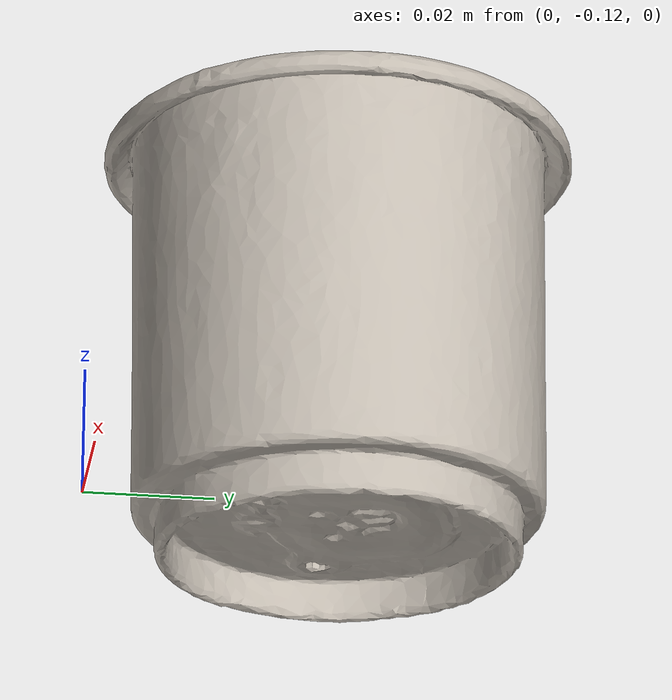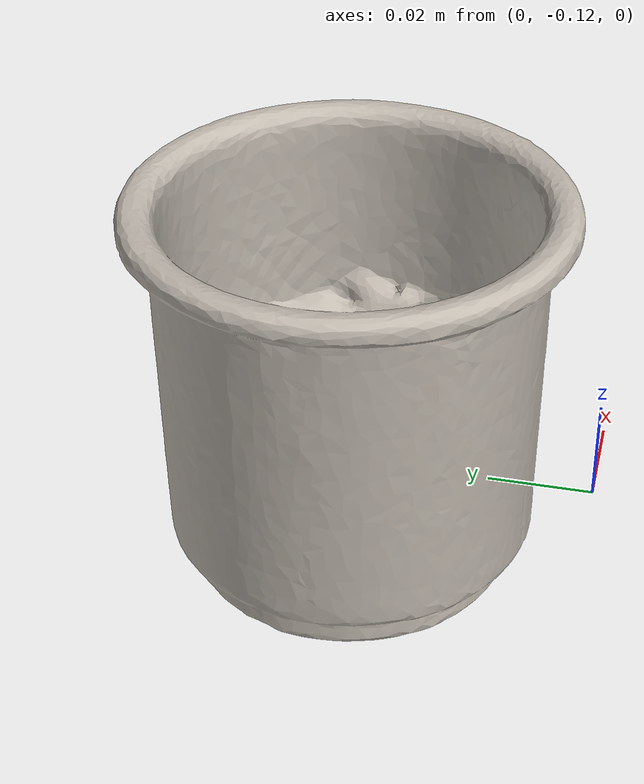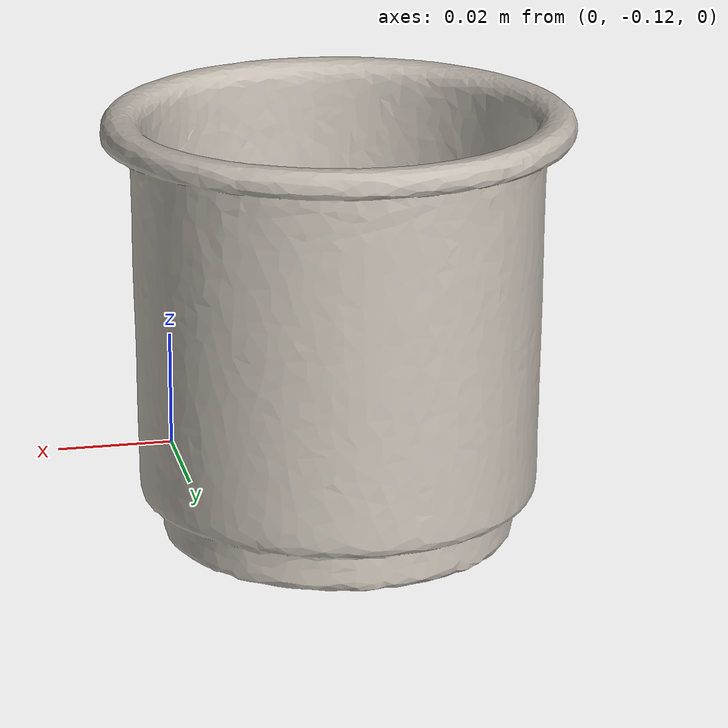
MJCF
<mujoco model="cups_e">
  <compiler angle="radian" meshdir="assets" texturedir="assets"/>
    <default>
        <default class="ycb_col">
            <geom contype="1" conaffinity="1" group="3" rgba=".4 .5 .6 1"/>
        </default>
        <default class="ycb_viz">
            <geom contype="0" conaffinity="0" type="mesh" mass="0"/>
        </default>
    </default>
  <asset>
    <texture type="2d" name="e_cups_tex" file="texture_map.png"/>
    <material name="e_cups_mat" texture="e_cups_tex" specular="0.5" shininess="0.5"/>
    <mesh file="textured.obj" name="e_cups"/>
    <mesh file="textured_collision_0.obj" name="e_cups_collision_0"/>
    <mesh file="textured_collision_1.obj" name="e_cups_collision_1"/>
    <mesh file="textured_collision_2.obj" name="e_cups_collision_2"/>
    <mesh file="textured_collision_3.obj" name="e_cups_collision_3"/>
    <mesh file="textured_collision_4.obj" name="e_cups_collision_4"/>
    <mesh file="textured_collision_5.obj" name="e_cups_collision_5"/>
    <mesh file="textured_collision_6.obj" name="e_cups_collision_6"/>
    <mesh file="textured_collision_7.obj" name="e_cups_collision_7"/>
    <mesh file="textured_collision_8.obj" name="e_cups_collision_8"/>
    <mesh file="textured_collision_9.obj" name="e_cups_collision_9"/>
    <mesh file="textured_collision_10.obj" name="e_cups_collision_10"/>
    <mesh file="textured_collision_11.obj" name="e_cups_collision_11"/>
    <mesh file="textured_collision_12.obj" name="e_cups_collision_12"/>
    <mesh file="textured_collision_13.obj" name="e_cups_collision_13"/>
    <mesh file="textured_collision_14.obj" name="e_cups_collision_14"/>
    <mesh file="textured_collision_15.obj" name="e_cups_collision_15"/>
    <mesh file="textured_collision_16.obj" name="e_cups_collision_16"/>
    <mesh file="textured_collision_17.obj" name="e_cups_collision_17"/>
    <mesh file="textured_collision_18.obj" name="e_cups_collision_18"/>
    <mesh file="textured_collision_19.obj" name="e_cups_collision_19"/>
    <mesh file="textured_collision_20.obj" name="e_cups_collision_20"/>
    <mesh file="textured_collision_21.obj" name="e_cups_collision_21"/>
    <mesh file="textured_collision_22.obj" name="e_cups_collision_22"/>
    <mesh file="textured_collision_23.obj" name="e_cups_collision_23"/>
    <mesh file="textured_collision_24.obj" name="e_cups_collision_24"/>
    <mesh file="textured_collision_25.obj" name="e_cups_collision_25"/>
    <mesh file="textured_collision_26.obj" name="e_cups_collision_26"/>
    <mesh file="textured_collision_27.obj" name="e_cups_collision_27"/>
    <mesh file="textured_collision_28.obj" name="e_cups_collision_28"/>
    <mesh file="textured_collision_29.obj" name="e_cups_collision_29"/>
    <mesh file="textured_collision_30.obj" name="e_cups_collision_30"/>
    <mesh file="textured_collision_31.obj" name="e_cups_collision_31"/>
    <mesh file="textured_collision_32.obj" name="e_cups_collision_32"/>
    <mesh file="textured_collision_33.obj" name="e_cups_collision_33"/>
    <mesh file="textured_collision_34.obj" name="e_cups_collision_34"/>
    <mesh file="textured_collision_35.obj" name="e_cups_collision_35"/>
    <mesh file="textured_collision_36.obj" name="e_cups_collision_36"/>
    <mesh file="textured_collision_37.obj" name="e_cups_collision_37"/>
    <mesh file="textured_collision_38.obj" name="e_cups_collision_38"/>
    <mesh file="textured_collision_39.obj" name="e_cups_collision_39"/>
    <mesh file="textured_collision_40.obj" name="e_cups_collision_40"/>
    <mesh file="textured_collision_41.obj" name="e_cups_collision_41"/>
    <mesh file="textured_collision_42.obj" name="e_cups_collision_42"/>
    <mesh file="textured_collision_43.obj" name="e_cups_collision_43"/>
    <mesh file="textured_collision_44.obj" name="e_cups_collision_44"/>
    <mesh file="textured_collision_45.obj" name="e_cups_collision_45"/>
    <mesh file="textured_collision_46.obj" name="e_cups_collision_46"/>
    <mesh file="textured_collision_47.obj" name="e_cups_collision_47"/>
    <mesh file="textured_collision_48.obj" name="e_cups_collision_48"/>
    <mesh file="textured_collision_49.obj" name="e_cups_collision_49"/>
    <mesh file="textured_collision_50.obj" name="e_cups_collision_50"/>
    <mesh file="textured_collision_51.obj" name="e_cups_collision_51"/>
    <mesh file="textured_collision_52.obj" name="e_cups_collision_52"/>
  </asset>
  <worldbody>
      <geom material="e_cups_mat" mesh="e_cups" class="ycb_viz"/>
      <geom mesh="e_cups_collision_0" class="ycb_col" conaffinity="1" condim="4" friction="0.1 0.1 0.1" mass="0.0002663095494291353" rgba="1 1 1 1" solimp="0.99 0.99 0.01" solref=".001 0.1" type="mesh" group="3"/>
      <geom mesh="e_cups_collision_1" class="ycb_col" conaffinity="1" condim="4" friction="0.1 0.1 0.1" mass="0.00016197090801237446" rgba="1 1 1 1" solimp="0.99 0.99 0.01" solref=".001 0.1" type="mesh" group="3"/>
      <geom mesh="e_cups_collision_2" class="ycb_col" conaffinity="1" condim="4" friction="0.1 0.1 0.1" mass="0.00023295154580538132" rgba="1 1 1 1" solimp="0.99 0.99 0.01" solref=".001 0.1" type="mesh" group="3"/>
      <geom mesh="e_cups_collision_3" class="ycb_col" conaffinity="1" condim="4" friction="0.1 0.1 0.1" mass="0.00020693823303443354" rgba="1 1 1 1" solimp="0.99 0.99 0.01" solref=".001 0.1" type="mesh" group="3"/>
      <geom mesh="e_cups_collision_4" class="ycb_col" conaffinity="1" condim="4" friction="0.1 0.1 0.1" mass="0.0007207161082322845" rgba="1 1 1 1" solimp="0.99 0.99 0.01" solref=".001 0.1" type="mesh" group="3"/>
      <geom mesh="e_cups_collision_5" class="ycb_col" conaffinity="1" condim="4" friction="0.1 0.1 0.1" mass="0.0006965686434019653" rgba="1 1 1 1" solimp="0.99 0.99 0.01" solref=".001 0.1" type="mesh" group="3"/>
      <geom mesh="e_cups_collision_6" class="ycb_col" conaffinity="1" condim="4" friction="0.1 0.1 0.1" mass="0.00061483618686131" rgba="1 1 1 1" solimp="0.99 0.99 0.01" solref=".001 0.1" type="mesh" group="3"/>
      <geom mesh="e_cups_collision_7" class="ycb_col" conaffinity="1" condim="4" friction="0.1 0.1 0.1" mass="0.00016042665572688224" rgba="1 1 1 1" solimp="0.99 0.99 0.01" solref=".001 0.1" type="mesh" group="3"/>
      <geom mesh="e_cups_collision_8" class="ycb_col" conaffinity="1" condim="4" friction="0.1 0.1 0.1" mass="0.00022407573996080236" rgba="1 1 1 1" solimp="0.99 0.99 0.01" solref=".001 0.1" type="mesh" group="3"/>
      <geom mesh="e_cups_collision_9" class="ycb_col" conaffinity="1" condim="4" friction="0.1 0.1 0.1" mass="8.745609404804353e-05" rgba="1 1 1 1" solimp="0.99 0.99 0.01" solref=".001 0.1" type="mesh" group="3"/>
      <geom mesh="e_cups_collision_10" class="ycb_col" conaffinity="1" condim="4" friction="0.1 0.1 0.1" mass="0.00021938303975607668" rgba="1 1 1 1" solimp="0.99 0.99 0.01" solref=".001 0.1" type="mesh" group="3"/>
      <geom mesh="e_cups_collision_11" class="ycb_col" conaffinity="1" condim="4" friction="0.1 0.1 0.1" mass="9.932041983878925e-05" rgba="1 1 1 1" solimp="0.99 0.99 0.01" solref=".001 0.1" type="mesh" group="3"/>
      <geom mesh="e_cups_collision_12" class="ycb_col" conaffinity="1" condim="4" friction="0.1 0.1 0.1" mass="0.00019401043923362473" rgba="1 1 1 1" solimp="0.99 0.99 0.01" solref=".001 0.1" type="mesh" group="3"/>
      <geom mesh="e_cups_collision_13" class="ycb_col" conaffinity="1" condim="4" friction="0.1 0.1 0.1" mass="0.00014444854598391242" rgba="1 1 1 1" solimp="0.99 0.99 0.01" solref=".001 0.1" type="mesh" group="3"/>
      <geom mesh="e_cups_collision_14" class="ycb_col" conaffinity="1" condim="4" friction="0.1 0.1 0.1" mass="0.00021022212633149342" rgba="1 1 1 1" solimp="0.99 0.99 0.01" solref=".001 0.1" type="mesh" group="3"/>
      <geom mesh="e_cups_collision_15" class="ycb_col" conaffinity="1" condim="4" friction="0.1 0.1 0.1" mass="0.00012135929764139379" rgba="1 1 1 1" solimp="0.99 0.99 0.01" solref=".001 0.1" type="mesh" group="3"/>
      <geom mesh="e_cups_collision_16" class="ycb_col" conaffinity="1" condim="4" friction="0.1 0.1 0.1" mass="0.00016375035371935128" rgba="1 1 1 1" solimp="0.99 0.99 0.01" solref=".001 0.1" type="mesh" group="3"/>
      <geom mesh="e_cups_collision_17" class="ycb_col" conaffinity="1" condim="4" friction="0.1 0.1 0.1" mass="0.00021802934845658727" rgba="1 1 1 1" solimp="0.99 0.99 0.01" solref=".001 0.1" type="mesh" group="3"/>
      <geom mesh="e_cups_collision_18" class="ycb_col" conaffinity="1" condim="4" friction="0.1 0.1 0.1" mass="0.0009735801280429229" rgba="1 1 1 1" solimp="0.99 0.99 0.01" solref=".001 0.1" type="mesh" group="3"/>
      <geom mesh="e_cups_collision_19" class="ycb_col" conaffinity="1" condim="4" friction="0.1 0.1 0.1" mass="0.0008502260627149424" rgba="1 1 1 1" solimp="0.99 0.99 0.01" solref=".001 0.1" type="mesh" group="3"/>
      <geom mesh="e_cups_collision_20" class="ycb_col" conaffinity="1" condim="4" friction="0.1 0.1 0.1" mass="0.0006197899740344196" rgba="1 1 1 1" solimp="0.99 0.99 0.01" solref=".001 0.1" type="mesh" group="3"/>
      <geom mesh="e_cups_collision_21" class="ycb_col" conaffinity="1" condim="4" friction="0.1 0.1 0.1" mass="0.00012495700101488355" rgba="1 1 1 1" solimp="0.99 0.99 0.01" solref=".001 0.1" type="mesh" group="3"/>
      <geom mesh="e_cups_collision_22" class="ycb_col" conaffinity="1" condim="4" friction="0.1 0.1 0.1" mass="0.00016903350038634317" rgba="1 1 1 1" solimp="0.99 0.99 0.01" solref=".001 0.1" type="mesh" group="3"/>
      <geom mesh="e_cups_collision_23" class="ycb_col" conaffinity="1" condim="4" friction="0.1 0.1 0.1" mass="0.00084222616487455" rgba="1 1 1 1" solimp="0.99 0.99 0.01" solref=".001 0.1" type="mesh" group="3"/>
      <geom mesh="e_cups_collision_24" class="ycb_col" conaffinity="1" condim="4" friction="0.1 0.1 0.1" mass="0.0007301670926228084" rgba="1 1 1 1" solimp="0.99 0.99 0.01" solref=".001 0.1" type="mesh" group="3"/>
      <geom mesh="e_cups_collision_25" class="ycb_col" conaffinity="1" condim="4" friction="0.1 0.1 0.1" mass="9.49713815875589e-05" rgba="1 1 1 1" solimp="0.99 0.99 0.01" solref=".001 0.1" type="mesh" group="3"/>
      <geom mesh="e_cups_collision_26" class="ycb_col" conaffinity="1" condim="4" friction="0.1 0.1 0.1" mass="0.0001522315431123295" rgba="1 1 1 1" solimp="0.99 0.99 0.01" solref=".001 0.1" type="mesh" group="3"/>
      <geom mesh="e_cups_collision_27" class="ycb_col" conaffinity="1" condim="4" friction="0.1 0.1 0.1" mass="0.0005479223048686305" rgba="1 1 1 1" solimp="0.99 0.99 0.01" solref=".001 0.1" type="mesh" group="3"/>
      <geom mesh="e_cups_collision_28" class="ycb_col" conaffinity="1" condim="4" friction="0.1 0.1 0.1" mass="0.0006251624172678962" rgba="1 1 1 1" solimp="0.99 0.99 0.01" solref=".001 0.1" type="mesh" group="3"/>
      <geom mesh="e_cups_collision_29" class="ycb_col" conaffinity="1" condim="4" friction="0.1 0.1 0.1" mass="9.530700703438687e-05" rgba="1 1 1 1" solimp="0.99 0.99 0.01" solref=".001 0.1" type="mesh" group="3"/>
      <geom mesh="e_cups_collision_30" class="ycb_col" conaffinity="1" condim="4" friction="0.1 0.1 0.1" mass="0.00011473747221514479" rgba="1 1 1 1" solimp="0.99 0.99 0.01" solref=".001 0.1" type="mesh" group="3"/>
      <geom mesh="e_cups_collision_31" class="ycb_col" conaffinity="1" condim="4" friction="0.1 0.1 0.1" mass="0.0016848426224271237" rgba="1 1 1 1" solimp="0.99 0.99 0.01" solref=".001 0.1" type="mesh" group="3"/>
      <geom mesh="e_cups_collision_32" class="ycb_col" conaffinity="1" condim="4" friction="0.1 0.1 0.1" mass="0.0003072028292025087" rgba="1 1 1 1" solimp="0.99 0.99 0.01" solref=".001 0.1" type="mesh" group="3"/>
      <geom mesh="e_cups_collision_33" class="ycb_col" conaffinity="1" condim="4" friction="0.1 0.1 0.1" mass="0.00028672033720770145" rgba="1 1 1 1" solimp="0.99 0.99 0.01" solref=".001 0.1" type="mesh" group="3"/>
      <geom mesh="e_cups_collision_34" class="ycb_col" conaffinity="1" condim="4" friction="0.1 0.1 0.1" mass="0.00030370077742470383" rgba="1 1 1 1" solimp="0.99 0.99 0.01" solref=".001 0.1" type="mesh" group="3"/>
      <geom mesh="e_cups_collision_35" class="ycb_col" conaffinity="1" condim="4" friction="0.1 0.1 0.1" mass="0.0002736672756682808" rgba="1 1 1 1" solimp="0.99 0.99 0.01" solref=".001 0.1" type="mesh" group="3"/>
      <geom mesh="e_cups_collision_36" class="ycb_col" conaffinity="1" condim="4" friction="0.1 0.1 0.1" mass="0.001576629062737113" rgba="1 1 1 1" solimp="0.99 0.99 0.01" solref=".001 0.1" type="mesh" group="3"/>
      <geom mesh="e_cups_collision_37" class="ycb_col" conaffinity="1" condim="4" friction="0.1 0.1 0.1" mass="0.0005841186317491032" rgba="1 1 1 1" solimp="0.99 0.99 0.01" solref=".001 0.1" type="mesh" group="3"/>
      <geom mesh="e_cups_collision_38" class="ycb_col" conaffinity="1" condim="4" friction="0.1 0.1 0.1" mass="0.0004335285301739643" rgba="1 1 1 1" solimp="0.99 0.99 0.01" solref=".001 0.1" type="mesh" group="3"/>
      <geom mesh="e_cups_collision_39" class="ycb_col" conaffinity="1" condim="4" friction="0.1 0.1 0.1" mass="0.0003377921938420578" rgba="1 1 1 1" solimp="0.99 0.99 0.01" solref=".001 0.1" type="mesh" group="3"/>
      <geom mesh="e_cups_collision_40" class="ycb_col" conaffinity="1" condim="4" friction="0.1 0.1 0.1" mass="0.0005110927218608437" rgba="1 1 1 1" solimp="0.99 0.99 0.01" solref=".001 0.1" type="mesh" group="3"/>
      <geom mesh="e_cups_collision_41" class="ycb_col" conaffinity="1" condim="4" friction="0.1 0.1 0.1" mass="0.0006429784534190876" rgba="1 1 1 1" solimp="0.99 0.99 0.01" solref=".001 0.1" type="mesh" group="3"/>
      <geom mesh="e_cups_collision_42" class="ycb_col" conaffinity="1" condim="4" friction="0.1 0.1 0.1" mass="0.00031844625436731503" rgba="1 1 1 1" solimp="0.99 0.99 0.01" solref=".001 0.1" type="mesh" group="3"/>
      <geom mesh="e_cups_collision_43" class="ycb_col" conaffinity="1" condim="4" friction="0.1 0.1 0.1" mass="0.0005668818850587143" rgba="1 1 1 1" solimp="0.99 0.99 0.01" solref=".001 0.1" type="mesh" group="3"/>
      <geom mesh="e_cups_collision_44" class="ycb_col" conaffinity="1" condim="4" friction="0.1 0.1 0.1" mass="0.0006921962062363016" rgba="1 1 1 1" solimp="0.99 0.99 0.01" solref=".001 0.1" type="mesh" group="3"/>
      <geom mesh="e_cups_collision_45" class="ycb_col" conaffinity="1" condim="4" friction="0.1 0.1 0.1" mass="0.0001265788807812733" rgba="1 1 1 1" solimp="0.99 0.99 0.01" solref=".001 0.1" type="mesh" group="3"/>
      <geom mesh="e_cups_collision_46" class="ycb_col" conaffinity="1" condim="4" friction="0.1 0.1 0.1" mass="0.00030504974369575586" rgba="1 1 1 1" solimp="0.99 0.99 0.01" solref=".001 0.1" type="mesh" group="3"/>
      <geom mesh="e_cups_collision_47" class="ycb_col" conaffinity="1" condim="4" friction="0.1 0.1 0.1" mass="0.0003275809056186858" rgba="1 1 1 1" solimp="0.99 0.99 0.01" solref=".001 0.1" type="mesh" group="3"/>
      <geom mesh="e_cups_collision_48" class="ycb_col" conaffinity="1" condim="4" friction="0.1 0.1 0.1" mass="0.0002741787360104236" rgba="1 1 1 1" solimp="0.99 0.99 0.01" solref=".001 0.1" type="mesh" group="3"/>
      <geom mesh="e_cups_collision_49" class="ycb_col" conaffinity="1" condim="4" friction="0.1 0.1 0.1" mass="0.00028167891010265285" rgba="1 1 1 1" solimp="0.99 0.99 0.01" solref=".001 0.1" type="mesh" group="3"/>
      <geom mesh="e_cups_collision_50" class="ycb_col" conaffinity="1" condim="4" friction="0.1 0.1 0.1" mass="0.0002965703003321488" rgba="1 1 1 1" solimp="0.99 0.99 0.01" solref=".001 0.1" type="mesh" group="3"/>
      <geom mesh="e_cups_collision_51" class="ycb_col" conaffinity="1" condim="4" friction="0.1 0.1 0.1" mass="3.3416619317371895e-05" rgba="1 1 1 1" solimp="0.99 0.99 0.01" solref=".001 0.1" type="mesh" group="3"/>
      <geom mesh="e_cups_collision_52" class="ycb_col" conaffinity="1" condim="4" friction="0.1 0.1 0.1" mass="0.00015206283751621337" rgba="1 1 1 1" solimp="0.99 0.99 0.01" solref=".001 0.1" type="mesh" group="3"/>
  </worldbody>
</mujoco>
